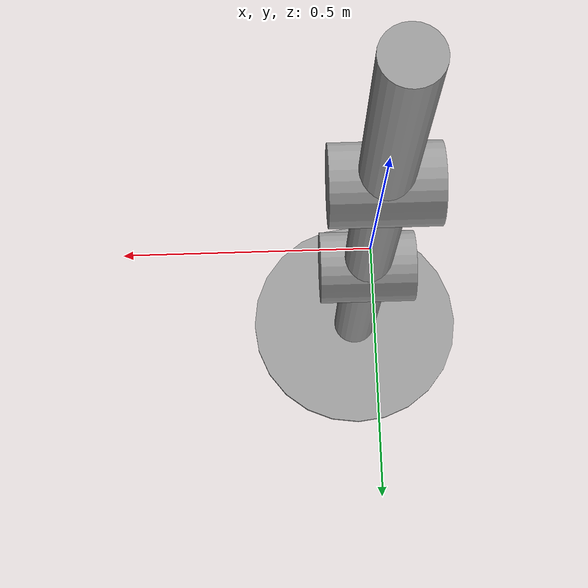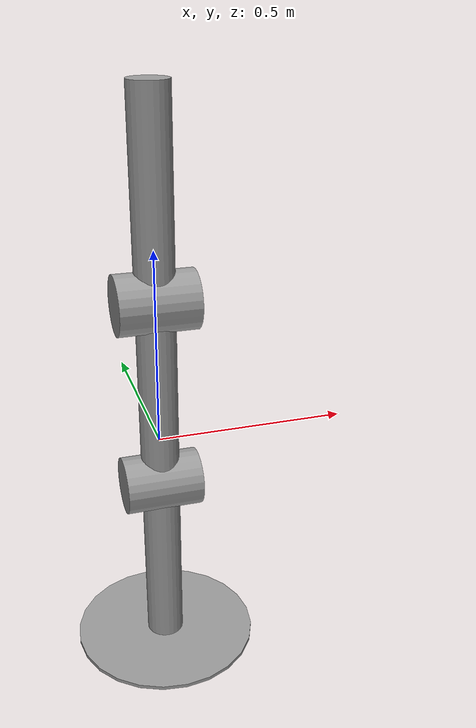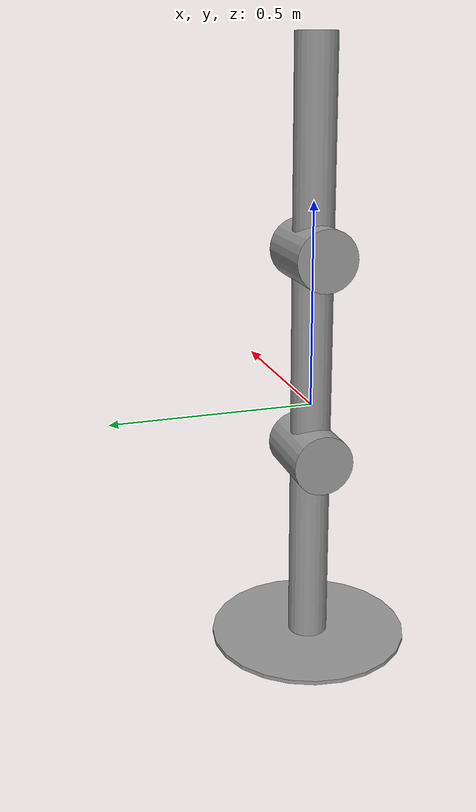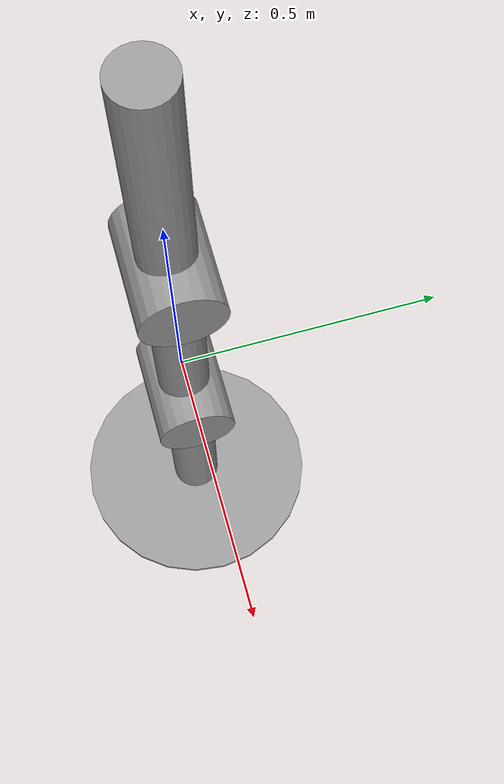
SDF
<?xml version='1.0'?>
<sdf version='1.6'>
  <model name='ArmRobot'>
    <link name='link_1'>
      <pose frame=''>0 0 -0.375 0 -0 0</pose>
      <inertial>
        <mass>1</mass>
        <inertia>
          <ixx>0.145833</ixx>
          <ixy>0</ixy>
          <ixz>0</ixz>
          <iyy>0.145833</iyy>
          <iyz>0</iyz>
          <izz>0.125</izz>
        </inertia>
        <pose frame=''>0 0 0 0 -0 0</pose>
      </inertial>
      <gravity>1</gravity>
      <self_collide>0</self_collide>
      <kinematic>0</kinematic>
      <visual name='visual'>
        <pose frame=''>0 0 0 0 -0 0</pose>
        <geometry>
          <cylinder>
            <radius>0.05</radius>
            <length>0.5</length>
          </cylinder>
        </geometry>
        <material>
          <lighting>1</lighting>
          <script>
            <uri>file://media/materials/scripts/gazebo.material</uri>
            <name>Gazebo/Grey</name>
          </script>
          <shader type='pixel'>
            <normal_map>__default__</normal_map>
          </shader>
          <ambient>0.3 0.3 0.3 1</ambient>
          <diffuse>0.7 0.7 0.7 1</diffuse>
          <specular>0.01 0.01 0.01 1</specular>
          <emissive>0 0 0 1</emissive>
        </material>
        <transparency>0</transparency>
        <cast_shadows>1</cast_shadows>
      </visual>
      <collision name='collision'>
        <laser_retro>0</laser_retro>
        <max_contacts>10</max_contacts>
        <pose frame=''>0 0 0 0 -0 0</pose>
        <geometry>
          <cylinder>
            <radius>0.05</radius>
            <length>0.5</length>
          </cylinder>
        </geometry>
        <surface>
          <friction>
            <ode>
              <mu>1</mu>
              <mu2>1</mu2>
              <fdir1>0 0 0</fdir1>
              <slip1>0</slip1>
              <slip2>0</slip2>
            </ode>
            <torsional>
              <coefficient>1</coefficient>
              <patch_radius>0</patch_radius>
              <surface_radius>0</surface_radius>
              <use_patch_radius>1</use_patch_radius>
              <ode>
                <slip>0</slip>
              </ode>
            </torsional>
          </friction>
          <bounce>
            <restitution_coefficient>0</restitution_coefficient>
            <threshold>1e+06</threshold>
          </bounce>
          <contact>
            <collide_without_contact>0</collide_without_contact>
            <collide_without_contact_bitmask>1</collide_without_contact_bitmask>
            <collide_bitmask>1</collide_bitmask>
            <ode>
              <soft_cfm>0</soft_cfm>
              <soft_erp>0.2</soft_erp>
              <kp>1e+13</kp>
              <kd>1</kd>
              <max_vel>0.01</max_vel>
              <min_depth>0</min_depth>
            </ode>
            <bullet>
              <split_impulse>1</split_impulse>
              <split_impulse_penetration_threshold>-0.01</split_impulse_penetration_threshold>
              <soft_cfm>0</soft_cfm>
              <soft_erp>0.2</soft_erp>
              <kp>1e+13</kp>
              <kd>1</kd>
            </bullet>
          </contact>
        </surface>
      </collision>
    </link>
    <link name='link_1_clone'>
      <pose frame=''>0 0 0.125 0 -0 0</pose>
      <inertial>
        <mass>1</mass>
        <inertia>
          <ixx>0.145833</ixx>
          <ixy>0</ixy>
          <ixz>0</ixz>
          <iyy>0.145833</iyy>
          <iyz>0</iyz>
          <izz>0.125</izz>
        </inertia>
        <pose frame=''>0 0 0 0 -0 0</pose>
      </inertial>
      <self_collide>0</self_collide>
      <kinematic>0</kinematic>
      <visual name='visual'>
        <pose frame=''>0 0 0 0 -0 0</pose>
        <geometry>
          <cylinder>
            <radius>0.05</radius>
            <length>0.5</length>
          </cylinder>
        </geometry>
        <material>
          <lighting>1</lighting>
          <script>
            <uri>file://media/materials/scripts/gazebo.material</uri>
            <name>Gazebo/Grey</name>
          </script>
          <shader type='pixel'>
            <normal_map>__default__</normal_map>
          </shader>
          <ambient>0.3 0.3 0.3 1</ambient>
          <diffuse>0.7 0.7 0.7 1</diffuse>
          <specular>0.01 0.01 0.01 1</specular>
          <emissive>0 0 0 1</emissive>
        </material>
        <transparency>0</transparency>
        <cast_shadows>1</cast_shadows>
      </visual>
      <collision name='collision'>
        <laser_retro>0</laser_retro>
        <max_contacts>10</max_contacts>
        <pose frame=''>0 0 0 0 -0 0</pose>
        <geometry>
          <cylinder>
            <radius>0.05</radius>
            <length>0.5</length>
          </cylinder>
        </geometry>
        <surface>
          <friction>
            <ode>
              <mu>1</mu>
              <mu2>1</mu2>
              <fdir1>0 0 0</fdir1>
              <slip1>0</slip1>
              <slip2>0</slip2>
            </ode>
            <torsional>
              <coefficient>1</coefficient>
              <patch_radius>0</patch_radius>
              <surface_radius>0</surface_radius>
              <use_patch_radius>1</use_patch_radius>
              <ode>
                <slip>0</slip>
              </ode>
            </torsional>
          </friction>
          <bounce>
            <restitution_coefficient>0</restitution_coefficient>
            <threshold>1e+06</threshold>
          </bounce>
          <contact>
            <collide_without_contact>0</collide_without_contact>
            <collide_without_contact_bitmask>1</collide_without_contact_bitmask>
            <collide_bitmask>1</collide_bitmask>
            <ode>
              <soft_cfm>0</soft_cfm>
              <soft_erp>0.2</soft_erp>
              <kp>1e+13</kp>
              <kd>1</kd>
              <max_vel>0.01</max_vel>
              <min_depth>0</min_depth>
            </ode>
            <bullet>
              <split_impulse>1</split_impulse>
              <split_impulse_penetration_threshold>-0.01</split_impulse_penetration_threshold>
              <soft_cfm>0</soft_cfm>
              <soft_erp>0.2</soft_erp>
              <kp>1e+13</kp>
              <kd>1</kd>
            </bullet>
          </contact>
        </surface>
      </collision>
    </link>
    <link name='link_1_clone_clone'>
      <pose frame=''>0 0 0.625 0 -0 0</pose>
      <inertial>
        <mass>1</mass>
        <inertia>
          <ixx>0.145833</ixx>
          <ixy>0</ixy>
          <ixz>0</ixz>
          <iyy>0.145833</iyy>
          <iyz>0</iyz>
          <izz>0.125</izz>
        </inertia>
        <pose frame=''>0 0 0 0 -0 0</pose>
      </inertial>
      <self_collide>0</self_collide>
      <kinematic>0</kinematic>
      <visual name='visual'>
        <pose frame=''>0 0 0 0 -0 0</pose>
        <geometry>
          <cylinder>
            <radius>0.05</radius>
            <length>0.5</length>
          </cylinder>
        </geometry>
        <material>
          <lighting>1</lighting>
          <script>
            <uri>file://media/materials/scripts/gazebo.material</uri>
            <name>Gazebo/Grey</name>
          </script>
          <shader type='pixel'>
            <normal_map>__default__</normal_map>
          </shader>
          <ambient>0.3 0.3 0.3 1</ambient>
          <diffuse>0.7 0.7 0.7 1</diffuse>
          <specular>0.01 0.01 0.01 1</specular>
          <emissive>0 0 0 1</emissive>
        </material>
        <transparency>0</transparency>
        <cast_shadows>1</cast_shadows>
      </visual>
      <collision name='collision'>
        <laser_retro>0</laser_retro>
        <max_contacts>10</max_contacts>
        <pose frame=''>0 0 0 0 -0 0</pose>
        <geometry>
          <cylinder>
            <radius>0.05</radius>
            <length>0.5</length>
          </cylinder>
        </geometry>
        <surface>
          <friction>
            <ode>
              <mu>1</mu>
              <mu2>1</mu2>
              <fdir1>0 0 0</fdir1>
              <slip1>0</slip1>
              <slip2>0</slip2>
            </ode>
            <torsional>
              <coefficient>1</coefficient>
              <patch_radius>0</patch_radius>
              <surface_radius>0</surface_radius>
              <use_patch_radius>1</use_patch_radius>
              <ode>
                <slip>0</slip>
              </ode>
            </torsional>
          </friction>
          <bounce>
            <restitution_coefficient>0</restitution_coefficient>
            <threshold>1e+06</threshold>
          </bounce>
          <contact>
            <collide_without_contact>0</collide_without_contact>
            <collide_without_contact_bitmask>1</collide_without_contact_bitmask>
            <collide_bitmask>1</collide_bitmask>
            <ode>
              <soft_cfm>0</soft_cfm>
              <soft_erp>0.2</soft_erp>
              <kp>1e+13</kp>
              <kd>1</kd>
              <max_vel>0.01</max_vel>
              <min_depth>0</min_depth>
            </ode>
            <bullet>
              <split_impulse>1</split_impulse>
              <split_impulse_penetration_threshold>-0.01</split_impulse_penetration_threshold>
              <soft_cfm>0</soft_cfm>
              <soft_erp>0.2</soft_erp>
              <kp>1e+13</kp>
              <kd>1</kd>
            </bullet>
          </contact>
        </surface>
      </collision>
    </link>
    <link name='link_2'>
      <pose frame=''>0 0 -0.625 0 -0 0</pose>
      <inertial>
        <mass>1</mass>
        <inertia>
          <ixx>0.145833</ixx>
          <ixy>0</ixy>
          <ixz>0</ixz>
          <iyy>0.145833</iyy>
          <iyz>0</iyz>
          <izz>0.125</izz>
        </inertia>
        <pose frame=''>0 0 0 0 -0 0</pose>
      </inertial>
      <gravity>1</gravity>
      <self_collide>0</self_collide>
      <kinematic>0</kinematic>
      <visual name='visual'>
        <pose frame=''>0 0 0 0 -0 0</pose>
        <geometry>
          <cylinder>
            <radius>0.25</radius>
            <length>0.01</length>
          </cylinder>
        </geometry>
        <material>
          <lighting>1</lighting>
          <script>
            <uri>file://media/materials/scripts/gazebo.material</uri>
            <name>Gazebo/Grey</name>
          </script>
          <shader type='pixel'>
            <normal_map>__default__</normal_map>
          </shader>
          <ambient>0.3 0.3 0.3 1</ambient>
          <diffuse>0.7 0.7 0.7 1</diffuse>
          <specular>0.01 0.01 0.01 1</specular>
          <emissive>0 0 0 1</emissive>
        </material>
        <transparency>0</transparency>
        <cast_shadows>1</cast_shadows>
      </visual>
      <collision name='collision'>
        <laser_retro>0</laser_retro>
        <max_contacts>10</max_contacts>
        <pose frame=''>0 0 0 0 -0 0</pose>
        <geometry>
          <cylinder>
            <radius>0.25</radius>
            <length>0.01</length>
          </cylinder>
        </geometry>
        <surface>
          <friction>
            <ode>
              <mu>1</mu>
              <mu2>1</mu2>
              <fdir1>0 0 0</fdir1>
              <slip1>0</slip1>
              <slip2>0</slip2>
            </ode>
            <torsional>
              <coefficient>1</coefficient>
              <patch_radius>0</patch_radius>
              <surface_radius>0</surface_radius>
              <use_patch_radius>1</use_patch_radius>
              <ode>
                <slip>0</slip>
              </ode>
            </torsional>
          </friction>
          <bounce>
            <restitution_coefficient>0</restitution_coefficient>
            <threshold>1e+06</threshold>
          </bounce>
          <contact>
            <collide_without_contact>0</collide_without_contact>
            <collide_without_contact_bitmask>1</collide_without_contact_bitmask>
            <collide_bitmask>1</collide_bitmask>
            <ode>
              <soft_cfm>0</soft_cfm>
              <soft_erp>0.2</soft_erp>
              <kp>1e+13</kp>
              <kd>1</kd>
              <max_vel>0.01</max_vel>
              <min_depth>0</min_depth>
            </ode>
            <bullet>
              <split_impulse>1</split_impulse>
              <split_impulse_penetration_threshold>-0.01</split_impulse_penetration_threshold>
              <soft_cfm>0</soft_cfm>
              <soft_erp>0.2</soft_erp>
              <kp>1e+13</kp>
              <kd>1</kd>
            </bullet>
          </contact>
        </surface>
      </collision>
    </link>
    <link name='link_3'>
      <pose frame=''>0 0 -0.125 0 -0 0</pose>
      <inertial>
        <mass>1</mass>
        <inertia>
          <ixx>0.145833</ixx>
          <ixy>0</ixy>
          <ixz>0</ixz>
          <iyy>0.145833</iyy>
          <iyz>0</iyz>
          <izz>0.125</izz>
        </inertia>
        <pose frame=''>0 0 0 0 -0 0</pose>
      </inertial>
      <gravity>1</gravity>
      <self_collide>0</self_collide>
      <kinematic>0</kinematic>
      <visual name='visual'>
        <pose frame=''>0 0 0 0 -1.5707 0</pose>
        <geometry>
          <cylinder>
            <radius>0.075</radius>
            <length>0.2</length>
          </cylinder>
        </geometry>
        <material>
          <lighting>1</lighting>
          <script>
            <uri>file://media/materials/scripts/gazebo.material</uri>
            <name>Gazebo/Grey</name>
          </script>
          <shader type='pixel'>
            <normal_map>__default__</normal_map>
          </shader>
          <ambient>0.3 0.3 0.3 1</ambient>
          <diffuse>0.7 0.7 0.7 1</diffuse>
          <specular>0.01 0.01 0.01 1</specular>
          <emissive>0 0 0 1</emissive>
        </material>
        <transparency>0</transparency>
        <cast_shadows>1</cast_shadows>
      </visual>
      <collision name='collision'>
        <laser_retro>0</laser_retro>
        <max_contacts>10</max_contacts>
        <pose frame=''>0 0 0 0 -1.5707 0</pose>
        <geometry>
          <cylinder>
            <radius>0.075</radius>
            <length>0.2</length>
          </cylinder>
        </geometry>
        <surface>
          <friction>
            <ode>
              <mu>1</mu>
              <mu2>1</mu2>
              <fdir1>0 0 0</fdir1>
              <slip1>0</slip1>
              <slip2>0</slip2>
            </ode>
            <torsional>
              <coefficient>1</coefficient>
              <patch_radius>0</patch_radius>
              <surface_radius>0</surface_radius>
              <use_patch_radius>1</use_patch_radius>
              <ode>
                <slip>0</slip>
              </ode>
            </torsional>
          </friction>
          <bounce>
            <restitution_coefficient>0</restitution_coefficient>
            <threshold>1e+06</threshold>
          </bounce>
          <contact>
            <collide_without_contact>0</collide_without_contact>
            <collide_without_contact_bitmask>1</collide_without_contact_bitmask>
            <collide_bitmask>1</collide_bitmask>
            <ode>
              <soft_cfm>0</soft_cfm>
              <soft_erp>0.2</soft_erp>
              <kp>1e+13</kp>
              <kd>1</kd>
              <max_vel>0.01</max_vel>
              <min_depth>0</min_depth>
            </ode>
            <bullet>
              <split_impulse>1</split_impulse>
              <split_impulse_penetration_threshold>-0.01</split_impulse_penetration_threshold>
              <soft_cfm>0</soft_cfm>
              <soft_erp>0.2</soft_erp>
              <kp>1e+13</kp>
              <kd>1</kd>
            </bullet>
          </contact>
        </surface>
      </collision>
    </link>
    <link name='link_3_clone'>
      <pose frame=''>0 0 0.375 0 -0 0</pose>
      <inertial>
        <mass>1</mass>
        <inertia>
          <ixx>0.145833</ixx>
          <ixy>0</ixy>
          <ixz>0</ixz>
          <iyy>0.145833</iyy>
          <iyz>0</iyz>
          <izz>0.125</izz>
        </inertia>
        <pose frame=''>0 0 0 0 -0 0</pose>
      </inertial>
      <self_collide>0</self_collide>
      <kinematic>0</kinematic>
      <visual name='visual'>
        <pose frame=''>0 0 0 0 -1.5707 0</pose>
        <geometry>
          <cylinder>
            <radius>0.075</radius>
            <length>0.2</length>
          </cylinder>
        </geometry>
        <material>
          <lighting>1</lighting>
          <script>
            <uri>file://media/materials/scripts/gazebo.material</uri>
            <name>Gazebo/Grey</name>
          </script>
          <shader type='pixel'>
            <normal_map>__default__</normal_map>
          </shader>
          <ambient>0.3 0.3 0.3 1</ambient>
          <diffuse>0.7 0.7 0.7 1</diffuse>
          <specular>0.01 0.01 0.01 1</specular>
          <emissive>0 0 0 1</emissive>
        </material>
        <transparency>0</transparency>
        <cast_shadows>1</cast_shadows>
      </visual>
      <collision name='collision'>
        <laser_retro>0</laser_retro>
        <max_contacts>10</max_contacts>
        <pose frame=''>0 0 0 0 -1.5707 0</pose>
        <geometry>
          <cylinder>
            <radius>0.075</radius>
            <length>0.2</length>
          </cylinder>
        </geometry>
        <surface>
          <friction>
            <ode>
              <mu>1</mu>
              <mu2>1</mu2>
              <fdir1>0 0 0</fdir1>
              <slip1>0</slip1>
              <slip2>0</slip2>
            </ode>
            <torsional>
              <coefficient>1</coefficient>
              <patch_radius>0</patch_radius>
              <surface_radius>0</surface_radius>
              <use_patch_radius>1</use_patch_radius>
              <ode>
                <slip>0</slip>
              </ode>
            </torsional>
          </friction>
          <bounce>
            <restitution_coefficient>0</restitution_coefficient>
            <threshold>1e+06</threshold>
          </bounce>
          <contact>
            <collide_without_contact>0</collide_without_contact>
            <collide_without_contact_bitmask>1</collide_without_contact_bitmask>
            <collide_bitmask>1</collide_bitmask>
            <ode>
              <soft_cfm>0</soft_cfm>
              <soft_erp>0.2</soft_erp>
              <kp>1e+13</kp>
              <kd>1</kd>
              <max_vel>0.01</max_vel>
              <min_depth>0</min_depth>
            </ode>
            <bullet>
              <split_impulse>1</split_impulse>
              <split_impulse_penetration_threshold>-0.01</split_impulse_penetration_threshold>
              <soft_cfm>0</soft_cfm>
              <soft_erp>0.2</soft_erp>
              <kp>1e+13</kp>
              <kd>1</kd>
            </bullet>
          </contact>
        </surface>
      </collision>
    </link>
    <joint name='link_1_JOINT_1' type='revolute2'>
      <parent>link_1</parent>
      <child>link_3</child>
      <pose frame=''>0 0 0 0 -0 0</pose>
      <axis>
        <xyz>1 0 0</xyz>
        <use_parent_model_frame>0</use_parent_model_frame>
        <limit>
          <lower>-1.79769e+308</lower>
          <upper>1.79769e+308</upper>
          <effort>-1</effort>
          <velocity>-1</velocity>
        </limit>
        <dynamics>
          <spring_reference>0</spring_reference>
          <spring_stiffness>0</spring_stiffness>
          <damping>0</damping>
        </dynamics>
      </axis>
      <axis2>
        <xyz>0 1 0</xyz>
        <use_parent_model_frame>0</use_parent_model_frame>
        <dynamics>
          <spring_reference>0</spring_reference>
          <spring_stiffness>0</spring_stiffness>
          <damping>0</damping>
        </dynamics>
        <limit>
          <lower>-1.79769e+308</lower>
          <upper>1.79769e+308</upper>
          <effort>-1</effort>
          <velocity>-1</velocity>
        </limit>
      </axis2>
      <physics>
        <ode>
          <limit>
            <cfm>0</cfm>
            <erp>0.2</erp>
          </limit>
          <suspension>
            <cfm>0</cfm>
            <erp>0.2</erp>
          </suspension>
        </ode>
      </physics>
    </joint>
    <joint name='link_1_clone_JOINT_3' type='revolute'>
      <parent>link_1_clone</parent>
      <child>link_3_clone</child>
      <pose frame=''>0 0 0 0 -0 0</pose>
      <axis>
        <xyz>1 0 0</xyz>
        <use_parent_model_frame>0</use_parent_model_frame>
        <limit>
          <lower>-1.79769e+308</lower>
          <upper>1.79769e+308</upper>
          <effort>-1</effort>
          <velocity>-1</velocity>
        </limit>
        <dynamics>
          <spring_reference>0</spring_reference>
          <spring_stiffness>0</spring_stiffness>
          <damping>0</damping>
        </dynamics>
      </axis>
      <physics>
        <ode>
          <limit>
            <cfm>0</cfm>
            <erp>0.2</erp>
          </limit>
          <suspension>
            <cfm>0</cfm>
            <erp>0.2</erp>
          </suspension>
        </ode>
      </physics>
    </joint>
    <joint name='link_2_JOINT_0' type='fixed'>
      <parent>link_2</parent>
      <child>link_1</child>
      <pose frame=''>0 0 0 0 -0 0</pose>
      <physics>
        <ode>
          <limit>
            <cfm>0</cfm>
            <erp>0.2</erp>
          </limit>
          <suspension>
            <cfm>0</cfm>
            <erp>0.2</erp>
          </suspension>
        </ode>
      </physics>
    </joint>
    <joint name='link_3_JOINT_2' type='fixed'>
      <parent>link_3</parent>
      <child>link_1_clone</child>
      <pose frame=''>0 0 0 0 -0 0</pose>
      <physics>
        <ode>
          <limit>
            <cfm>0</cfm>
            <erp>0.2</erp>
          </limit>
          <suspension>
            <cfm>0</cfm>
            <erp>0.2</erp>
          </suspension>
        </ode>
      </physics>
    </joint>
    <joint name='link_3_clone_JOINT_4' type='fixed'>
      <parent>link_3_clone</parent>
      <child>link_1_clone_clone</child>
      <pose frame=''>0 0 0 0 -0 0</pose>
      <physics>
        <ode>
          <limit>
            <cfm>0</cfm>
            <erp>0.2</erp>
          </limit>
          <suspension>
            <cfm>0</cfm>
            <erp>0.2</erp>
          </suspension>
        </ode>
      </physics>
    </joint>
    <static>0</static>
    <allow_auto_disable>1</allow_auto_disable>
  </model>
</sdf>
